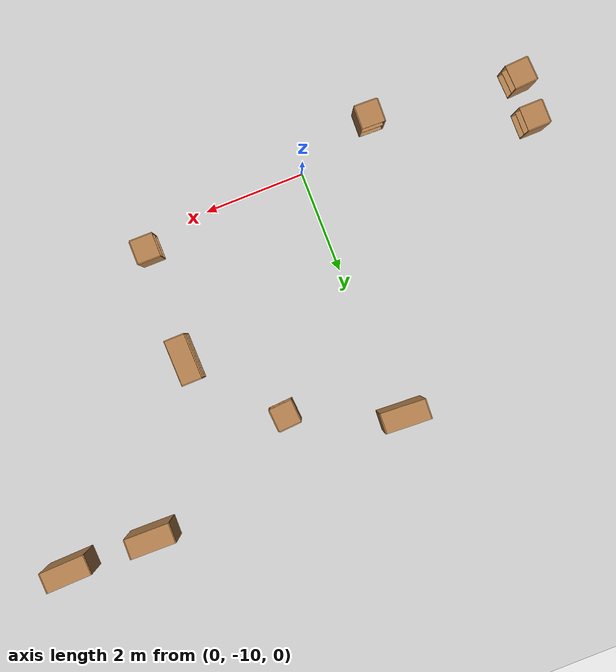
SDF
<sdf version="1.6">
 <world name="default">
  <model name="ground_plane">
   <static>1</static>
   <link name="link">
    <collision name="collision">
     <geometry><plane><normal>0 0 1</normal><size>100 100</size></plane></geometry>
     <surface>
      <contact><collide_bitmask>65535</collide_bitmask></contact>
      <friction><ode><mu>100</mu><mu2>50</mu2></ode></friction>
     </surface>
    </collision>
    <visual name="visual">
     <cast_shadows>0</cast_shadows>
     <geometry><plane><normal>0 0 1</normal><size>100 100</size></plane></geometry>
     <material>
      <script><uri>file://media/materials/scripts/gazebo.material</uri><name>Gazebo/Grey</name></script>
     </material>
    </visual>
   </link>
  </model>
  <model name="cabinet">
   <static>1</static>
   <link name="cabinet_bottom_plate">
    <inertial>
     <pose>0 0 -1 0 -0 0</pose>
     <inertia><ixx>2.05</ixx><ixy>0</ixy><ixz>0</ixz><iyy>2.05</iyy><iyz>0</iyz><izz>2.05</izz></inertia>
     <mass>25</mass>
    </inertial>
    <collision name="cabinet_bottom_plate_geom">
     <pose>0 0 0.01 0 -0 0</pose>
     <geometry><box><size>0.45 0.45 0.02</size></box></geometry>
    </collision>
    <visual name="cabinet_bottom_plate_geom_visual">
     <pose>0 0 0.01 0 -0 0</pose>
     <geometry><box><size>0.45 0.45 0.02</size></box></geometry>
     <material>
      <script><uri>file://media/materials/scripts/gazebo.material</uri><name>Gazebo/Wood</name></script>
     </material>
    </visual>
    <collision name="cabinet_bottom_plate_geom_cabinet_back_plate">
     <pose>0.235 0 0.51 0 -0 0</pose>
     <geometry><box><size>0.02 0.45 1.02</size></box></geometry>
    </collision>
    <visual name="cabinet_bottom_plate_geom_cabinet_back_plate_visual">
     <pose>0.235 0 0.51 0 -0 0</pose>
     <geometry><box><size>0.02 0.45 1.02</size></box></geometry>
     <material>
      <script><uri>file://media/materials/scripts/gazebo.material</uri><name>Gazebo/Wood</name></script>
     </material>
    </visual>
    <collision name="cabinet_bottom_plate_geom_cabinet_left_plate">
     <pose>0 0.235 0.51 0 -0 0</pose>
     <geometry><box><size>0.45 0.02 1.02</size></box></geometry>
    </collision>
    <visual name="cabinet_bottom_plate_geom_cabinet_left_plate_visual">
     <pose>0 0.235 0.51 0 -0 0</pose>
     <geometry><box><size>0.45 0.02 1.02</size></box></geometry>
     <material>
      <script><uri>file://media/materials/scripts/gazebo.material</uri><name>Gazebo/Wood</name></script>
     </material>
    </visual>
    <collision name="cabinet_bottom_plate_geom_cabinet_middle_plate">
     <pose>0 0 0.51 0 -0 0</pose>
     <geometry><box><size>0.45 0.45 0.02</size></box></geometry>
    </collision>
    <visual name="cabinet_bottom_plate_geom_cabinet_middle_plate_visual">
     <pose>0 0 0.51 0 -0 0</pose>
     <geometry><box><size>0.45 0.45 0.02</size></box></geometry>
     <material>
      <script><uri>file://media/materials/scripts/gazebo.material</uri><name>Gazebo/Wood</name></script>
     </material>
    </visual>
    <collision name="cabinet_bottom_plate_geom_cabinet_right_plate">
     <pose>0 -0.235 0.51 0 -0 0</pose>
     <geometry><box><size>0.45 0.02 1.02</size></box></geometry>
    </collision>
    <visual name="cabinet_bottom_plate_geom_cabinet_right_plate_visual">
     <pose>0 -0.235 0.51 0 -0 0</pose>
     <geometry><box><size>0.45 0.02 1.02</size></box></geometry>
     <material>
      <script><uri>file://media/materials/scripts/gazebo.material</uri><name>Gazebo/Wood</name></script>
     </material>
    </visual>
    <collision name="cabinet_bottom_plate_geom_cabinet_top_plate">
     <pose>0 0 1.01 0 -0 0</pose>
     <geometry><box><size>0.45 0.45 0.02</size></box></geometry>
    </collision>
    <visual name="cabinet_bottom_plate_geom_cabinet_top_plate_visual">
     <pose>0 0 1.01 0 -0 0</pose>
     <geometry><box><size>0.45 0.45 0.02</size></box></geometry>
     <material>
      <script><uri>file://media/materials/scripts/gazebo.material</uri><name>Gazebo/Wood</name></script>
     </material>
    </visual>
   </link>
   <pose>-4.49938 -10.1813 0 0 0 -3.08048</pose>
  </model>
  <model name="cabinet_0">
   <static>1</static>
   <link name="cabinet_bottom_plate">
    <inertial>
     <pose>0 0 -1 0 -0 0</pose>
     <inertia><ixx>2.05</ixx><ixy>0</ixy><ixz>0</ixz><iyy>2.05</iyy><iyz>0</iyz><izz>2.05</izz></inertia>
     <mass>25</mass>
    </inertial>
    <collision name="cabinet_bottom_plate_geom">
     <pose>0 0 0.01 0 -0 0</pose>
     <geometry><box><size>0.45 0.45 0.02</size></box></geometry>
    </collision>
    <visual name="cabinet_bottom_plate_geom_visual">
     <pose>0 0 0.01 0 -0 0</pose>
     <geometry><box><size>0.45 0.45 0.02</size></box></geometry>
     <material>
      <script><uri>file://media/materials/scripts/gazebo.material</uri><name>Gazebo/Wood</name></script>
     </material>
    </visual>
    <collision name="cabinet_bottom_plate_geom_cabinet_back_plate">
     <pose>0.235 0 0.51 0 -0 0</pose>
     <geometry><box><size>0.02 0.45 1.02</size></box></geometry>
    </collision>
    <visual name="cabinet_bottom_plate_geom_cabinet_back_plate_visual">
     <pose>0.235 0 0.51 0 -0 0</pose>
     <geometry><box><size>0.02 0.45 1.02</size></box></geometry>
     <material>
      <script><uri>file://media/materials/scripts/gazebo.material</uri><name>Gazebo/Wood</name></script>
     </material>
    </visual>
    <collision name="cabinet_bottom_plate_geom_cabinet_left_plate">
     <pose>0 0.235 0.51 0 -0 0</pose>
     <geometry><box><size>0.45 0.02 1.02</size></box></geometry>
    </collision>
    <visual name="cabinet_bottom_plate_geom_cabinet_left_plate_visual">
     <pose>0 0.235 0.51 0 -0 0</pose>
     <geometry><box><size>0.45 0.02 1.02</size></box></geometry>
     <material>
      <script><uri>file://media/materials/scripts/gazebo.material</uri><name>Gazebo/Wood</name></script>
     </material>
    </visual>
    <collision name="cabinet_bottom_plate_geom_cabinet_middle_plate">
     <pose>0 0 0.51 0 -0 0</pose>
     <geometry><box><size>0.45 0.45 0.02</size></box></geometry>
    </collision>
    <visual name="cabinet_bottom_plate_geom_cabinet_middle_plate_visual">
     <pose>0 0 0.51 0 -0 0</pose>
     <geometry><box><size>0.45 0.45 0.02</size></box></geometry>
     <material>
      <script><uri>file://media/materials/scripts/gazebo.material</uri><name>Gazebo/Wood</name></script>
     </material>
    </visual>
    <collision name="cabinet_bottom_plate_geom_cabinet_right_plate">
     <pose>0 -0.235 0.51 0 -0 0</pose>
     <geometry><box><size>0.45 0.02 1.02</size></box></geometry>
    </collision>
    <visual name="cabinet_bottom_plate_geom_cabinet_right_plate_visual">
     <pose>0 -0.235 0.51 0 -0 0</pose>
     <geometry><box><size>0.45 0.02 1.02</size></box></geometry>
     <material>
      <script><uri>file://media/materials/scripts/gazebo.material</uri><name>Gazebo/Wood</name></script>
     </material>
    </visual>
    <collision name="cabinet_bottom_plate_geom_cabinet_top_plate">
     <pose>0 0 1.01 0 -0 0</pose>
     <geometry><box><size>0.45 0.45 0.02</size></box></geometry>
    </collision>
    <visual name="cabinet_bottom_plate_geom_cabinet_top_plate_visual">
     <pose>0 0 1.01 0 -0 0</pose>
     <geometry><box><size>0.45 0.45 0.02</size></box></geometry>
     <material>
      <script><uri>file://media/materials/scripts/gazebo.material</uri><name>Gazebo/Wood</name></script>
     </material>
    </visual>
   </link>
   <pose>-4.44718 -9.34571 0 0 0 -3.13032</pose>
  </model>
  <model name="bookshelf">
   <static>1</static>
   <link name="link">
    <inertial><mass>1</mass></inertial>
    <collision name="back">
     <pose>0 0.005 0.6 0 -0 0</pose>
     <geometry><box><size>0.9 0.01 1.2</size></box></geometry>
    </collision>
    <visual name="visual1">
     <pose>0 0.005 0.6 0 -0 0</pose>
     <geometry><box><size>0.9 0.01 1.2</size></box></geometry>
     <material>
      <script><uri>file://media/materials/scripts/gazebo.material</uri><name>Gazebo/Wood</name></script>
     </material>
    </visual>
    <collision name="left_side">
     <pose>0.45 -0.195 0.6 0 -0 0</pose>
     <geometry><box><size>0.02 0.4 1.2</size></box></geometry>
    </collision>
    <visual name="visual2">
     <pose>0.45 -0.195 0.6 0 -0 0</pose>
     <geometry><box><size>0.02 0.4 1.2</size></box></geometry>
     <material>
      <script><uri>file://media/materials/scripts/gazebo.material</uri><name>Gazebo/Wood</name></script>
     </material>
    </visual>
    <collision name="right_side">
     <pose>-0.45 -0.195 0.6 0 -0 0</pose>
     <geometry><box><size>0.02 0.4 1.2</size></box></geometry>
    </collision>
    <visual name="visual3">
     <pose>-0.45 -0.195 0.6 0 -0 0</pose>
     <geometry><box><size>0.02 0.4 1.2</size></box></geometry>
     <material>
      <script><uri>file://media/materials/scripts/gazebo.material</uri><name>Gazebo/Wood</name></script>
     </material>
    </visual>
    <collision name="bottom">
     <pose>0 -0.195 0.03 0 -0 0</pose>
     <geometry><box><size>0.88 0.4 0.06</size></box></geometry>
    </collision>
    <visual name="visual4">
     <pose>0 -0.195 0.03 0 -0 0</pose>
     <geometry><box><size>0.88 0.4 0.06</size></box></geometry>
     <material>
      <script><uri>file://media/materials/scripts/gazebo.material</uri><name>Gazebo/Wood</name></script>
     </material>
    </visual>
    <collision name="top">
     <pose>0 -0.195 1.19 0 -0 0</pose>
     <geometry><box><size>0.88 0.4 0.02</size></box></geometry>
    </collision>
    <visual name="visual5">
     <pose>0 -0.195 1.19 0 -0 0</pose>
     <geometry><box><size>0.88 0.4 0.02</size></box></geometry>
     <material>
      <script><uri>file://media/materials/scripts/gazebo.material</uri><name>Gazebo/Wood</name></script>
     </material>
    </visual>
    <collision name="low_shelf">
     <pose>0 -0.195 0.43 0 -0 0</pose>
     <geometry><box><size>0.88 0.4 0.02</size></box></geometry>
    </collision>
    <visual name="visual6">
     <pose>0 -0.195 0.43 0 -0 0</pose>
     <geometry><box><size>0.88 0.4 0.02</size></box></geometry>
     <material>
      <script><uri>file://media/materials/scripts/gazebo.material</uri><name>Gazebo/Wood</name></script>
     </material>
    </visual>
    <collision name="high_shelf">
     <pose>0 -0.195 0.8 0 -0 0</pose>
     <geometry><box><size>0.88 0.4 0.02</size></box></geometry>
    </collision>
    <visual name="visual7">
     <pose>0 -0.195 0.8 0 -0 0</pose>
     <geometry><box><size>0.88 0.4 0.02</size></box></geometry>
     <material>
      <script><uri>file://media/materials/scripts/gazebo.material</uri><name>Gazebo/Wood</name></script>
     </material>
    </visual>
   </link>
   <pose>5.19449 -4.72447 0 0 -0 3.1286</pose>
  </model>
  <model name="bookshelf_0">
   <static>1</static>
   <link name="link">
    <inertial><mass>1</mass></inertial>
    <collision name="back">
     <pose>0 0.005 0.6 0 -0 0</pose>
     <geometry><box><size>0.9 0.01 1.2</size></box></geometry>
    </collision>
    <visual name="visual1">
     <pose>0 0.005 0.6 0 -0 0</pose>
     <geometry><box><size>0.9 0.01 1.2</size></box></geometry>
     <material>
      <script><uri>file://media/materials/scripts/gazebo.material</uri><name>Gazebo/Wood</name></script>
     </material>
    </visual>
    <collision name="left_side">
     <pose>0.45 -0.195 0.6 0 -0 0</pose>
     <geometry><box><size>0.02 0.4 1.2</size></box></geometry>
    </collision>
    <visual name="visual2">
     <pose>0.45 -0.195 0.6 0 -0 0</pose>
     <geometry><box><size>0.02 0.4 1.2</size></box></geometry>
     <material>
      <script><uri>file://media/materials/scripts/gazebo.material</uri><name>Gazebo/Wood</name></script>
     </material>
    </visual>
    <collision name="right_side">
     <pose>-0.45 -0.195 0.6 0 -0 0</pose>
     <geometry><box><size>0.02 0.4 1.2</size></box></geometry>
    </collision>
    <visual name="visual3">
     <pose>-0.45 -0.195 0.6 0 -0 0</pose>
     <geometry><box><size>0.02 0.4 1.2</size></box></geometry>
     <material>
      <script><uri>file://media/materials/scripts/gazebo.material</uri><name>Gazebo/Wood</name></script>
     </material>
    </visual>
    <collision name="bottom">
     <pose>0 -0.195 0.03 0 -0 0</pose>
     <geometry><box><size>0.88 0.4 0.06</size></box></geometry>
    </collision>
    <visual name="visual4">
     <pose>0 -0.195 0.03 0 -0 0</pose>
     <geometry><box><size>0.88 0.4 0.06</size></box></geometry>
     <material>
      <script><uri>file://media/materials/scripts/gazebo.material</uri><name>Gazebo/Wood</name></script>
     </material>
    </visual>
    <collision name="top">
     <pose>0 -0.195 1.19 0 -0 0</pose>
     <geometry><box><size>0.88 0.4 0.02</size></box></geometry>
    </collision>
    <visual name="visual5">
     <pose>0 -0.195 1.19 0 -0 0</pose>
     <geometry><box><size>0.88 0.4 0.02</size></box></geometry>
     <material>
      <script><uri>file://media/materials/scripts/gazebo.material</uri><name>Gazebo/Wood</name></script>
     </material>
    </visual>
    <collision name="low_shelf">
     <pose>0 -0.195 0.43 0 -0 0</pose>
     <geometry><box><size>0.88 0.4 0.02</size></box></geometry>
    </collision>
    <visual name="visual6">
     <pose>0 -0.195 0.43 0 -0 0</pose>
     <geometry><box><size>0.88 0.4 0.02</size></box></geometry>
     <material>
      <script><uri>file://media/materials/scripts/gazebo.material</uri><name>Gazebo/Wood</name></script>
     </material>
    </visual>
    <collision name="high_shelf">
     <pose>0 -0.195 0.8 0 -0 0</pose>
     <geometry><box><size>0.88 0.4 0.02</size></box></geometry>
    </collision>
    <visual name="visual7">
     <pose>0 -0.195 0.8 0 -0 0</pose>
     <geometry><box><size>0.88 0.4 0.02</size></box></geometry>
     <material>
      <script><uri>file://media/materials/scripts/gazebo.material</uri><name>Gazebo/Wood</name></script>
     </material>
    </visual>
   </link>
   <pose>6.89545 -4.72461 0 0 0 -3.1065</pose>
  </model>
  <model name="cabinet_clone">
   <static>1</static>
   <link name="cabinet_bottom_plate">
    <inertial>
     <pose>0 0 -1 0 -0 0</pose>
     <inertia><ixx>2.05</ixx><ixy>0</ixy><ixz>0</ixz><iyy>2.05</iyy><iyz>0</iyz><izz>2.05</izz></inertia>
     <mass>25</mass>
    </inertial>
    <collision name="cabinet_bottom_plate_geom">
     <pose>0 0 0.01 0 -0 0</pose>
     <geometry><box><size>0.45 0.45 0.02</size></box></geometry>
    </collision>
    <visual name="cabinet_bottom_plate_geom_visual">
     <pose>0 0 0.01 0 -0 0</pose>
     <geometry><box><size>0.45 0.45 0.02</size></box></geometry>
     <material>
      <script><uri>file://media/materials/scripts/gazebo.material</uri><name>Gazebo/Wood</name></script>
     </material>
    </visual>
    <collision name="cabinet_bottom_plate_geom_cabinet_back_plate">
     <pose>0.235 0 0.51 0 -0 0</pose>
     <geometry><box><size>0.02 0.45 1.02</size></box></geometry>
    </collision>
    <visual name="cabinet_bottom_plate_geom_cabinet_back_plate_visual">
     <pose>0.235 0 0.51 0 -0 0</pose>
     <geometry><box><size>0.02 0.45 1.02</size></box></geometry>
     <material>
      <script><uri>file://media/materials/scripts/gazebo.material</uri><name>Gazebo/Wood</name></script>
     </material>
    </visual>
    <collision name="cabinet_bottom_plate_geom_cabinet_left_plate">
     <pose>0 0.235 0.51 0 -0 0</pose>
     <geometry><box><size>0.45 0.02 1.02</size></box></geometry>
    </collision>
    <visual name="cabinet_bottom_plate_geom_cabinet_left_plate_visual">
     <pose>0 0.235 0.51 0 -0 0</pose>
     <geometry><box><size>0.45 0.02 1.02</size></box></geometry>
     <material>
      <script><uri>file://media/materials/scripts/gazebo.material</uri><name>Gazebo/Wood</name></script>
     </material>
    </visual>
    <collision name="cabinet_bottom_plate_geom_cabinet_middle_plate">
     <pose>0 0 0.51 0 -0 0</pose>
     <geometry><box><size>0.45 0.45 0.02</size></box></geometry>
    </collision>
    <visual name="cabinet_bottom_plate_geom_cabinet_middle_plate_visual">
     <pose>0 0 0.51 0 -0 0</pose>
     <geometry><box><size>0.45 0.45 0.02</size></box></geometry>
     <material>
      <script><uri>file://media/materials/scripts/gazebo.material</uri><name>Gazebo/Wood</name></script>
     </material>
    </visual>
    <collision name="cabinet_bottom_plate_geom_cabinet_right_plate">
     <pose>0 -0.235 0.51 0 -0 0</pose>
     <geometry><box><size>0.45 0.02 1.02</size></box></geometry>
    </collision>
    <visual name="cabinet_bottom_plate_geom_cabinet_right_plate_visual">
     <pose>0 -0.235 0.51 0 -0 0</pose>
     <geometry><box><size>0.45 0.02 1.02</size></box></geometry>
     <material>
      <script><uri>file://media/materials/scripts/gazebo.material</uri><name>Gazebo/Wood</name></script>
     </material>
    </visual>
    <collision name="cabinet_bottom_plate_geom_cabinet_top_plate">
     <pose>0 0 1.01 0 -0 0</pose>
     <geometry><box><size>0.45 0.45 0.02</size></box></geometry>
    </collision>
    <visual name="cabinet_bottom_plate_geom_cabinet_top_plate_visual">
     <pose>0 0 1.01 0 -0 0</pose>
     <geometry><box><size>0.45 0.45 0.02</size></box></geometry>
     <material>
      <script><uri>file://media/materials/scripts/gazebo.material</uri><name>Gazebo/Wood</name></script>
     </material>
    </visual>
   </link>
   <pose>-1.55811 -10.5006 0 0 0 -1.59522</pose>
  </model>
  <model name="cabinet_clone_0">
   <static>1</static>
   <link name="cabinet_bottom_plate">
    <inertial>
     <pose>0 0 -1 0 -0 0</pose>
     <inertia><ixx>2.05</ixx><ixy>0</ixy><ixz>0</ixz><iyy>2.05</iyy><iyz>0</iyz><izz>2.05</izz></inertia>
     <mass>25</mass>
    </inertial>
    <collision name="cabinet_bottom_plate_geom">
     <pose>0 0 0.01 0 -0 0</pose>
     <geometry><box><size>0.45 0.45 0.02</size></box></geometry>
    </collision>
    <visual name="cabinet_bottom_plate_geom_visual">
     <pose>0 0 0.01 0 -0 0</pose>
     <geometry><box><size>0.45 0.45 0.02</size></box></geometry>
     <material>
      <script><uri>file://media/materials/scripts/gazebo.material</uri><name>Gazebo/Wood</name></script>
     </material>
    </visual>
    <collision name="cabinet_bottom_plate_geom_cabinet_back_plate">
     <pose>0.235 0 0.51 0 -0 0</pose>
     <geometry><box><size>0.02 0.45 1.02</size></box></geometry>
    </collision>
    <visual name="cabinet_bottom_plate_geom_cabinet_back_plate_visual">
     <pose>0.235 0 0.51 0 -0 0</pose>
     <geometry><box><size>0.02 0.45 1.02</size></box></geometry>
     <material>
      <script><uri>file://media/materials/scripts/gazebo.material</uri><name>Gazebo/Wood</name></script>
     </material>
    </visual>
    <collision name="cabinet_bottom_plate_geom_cabinet_left_plate">
     <pose>0 0.235 0.51 0 -0 0</pose>
     <geometry><box><size>0.45 0.02 1.02</size></box></geometry>
    </collision>
    <visual name="cabinet_bottom_plate_geom_cabinet_left_plate_visual">
     <pose>0 0.235 0.51 0 -0 0</pose>
     <geometry><box><size>0.45 0.02 1.02</size></box></geometry>
     <material>
      <script><uri>file://media/materials/scripts/gazebo.material</uri><name>Gazebo/Wood</name></script>
     </material>
    </visual>
    <collision name="cabinet_bottom_plate_geom_cabinet_middle_plate">
     <pose>0 0 0.51 0 -0 0</pose>
     <geometry><box><size>0.45 0.45 0.02</size></box></geometry>
    </collision>
    <visual name="cabinet_bottom_plate_geom_cabinet_middle_plate_visual">
     <pose>0 0 0.51 0 -0 0</pose>
     <geometry><box><size>0.45 0.45 0.02</size></box></geometry>
     <material>
      <script><uri>file://media/materials/scripts/gazebo.material</uri><name>Gazebo/Wood</name></script>
     </material>
    </visual>
    <collision name="cabinet_bottom_plate_geom_cabinet_right_plate">
     <pose>0 -0.235 0.51 0 -0 0</pose>
     <geometry><box><size>0.45 0.02 1.02</size></box></geometry>
    </collision>
    <visual name="cabinet_bottom_plate_geom_cabinet_right_plate_visual">
     <pose>0 -0.235 0.51 0 -0 0</pose>
     <geometry><box><size>0.45 0.02 1.02</size></box></geometry>
     <material>
      <script><uri>file://media/materials/scripts/gazebo.material</uri><name>Gazebo/Wood</name></script>
     </material>
    </visual>
    <collision name="cabinet_bottom_plate_geom_cabinet_top_plate">
     <pose>0 0 1.01 0 -0 0</pose>
     <geometry><box><size>0.45 0.45 0.02</size></box></geometry>
    </collision>
    <visual name="cabinet_bottom_plate_geom_cabinet_top_plate_visual">
     <pose>0 0 1.01 0 -0 0</pose>
     <geometry><box><size>0.45 0.45 0.02</size></box></geometry>
     <material>
      <script><uri>file://media/materials/scripts/gazebo.material</uri><name>Gazebo/Wood</name></script>
     </material>
    </visual>
   </link>
   <pose>1.99583 -5.78449 0 0 -0 1.64091</pose>
  </model>
  <model name="bookshelf_clone_0">
   <static>1</static>
   <link name="link">
    <inertial><mass>1</mass></inertial>
    <collision name="back">
     <pose>0 0.005 0.6 0 -0 0</pose>
     <geometry><box><size>0.9 0.01 1.2</size></box></geometry>
    </collision>
    <visual name="visual1">
     <pose>0 0.005 0.6 0 -0 0</pose>
     <geometry><box><size>0.9 0.01 1.2</size></box></geometry>
     <material>
      <script><uri>file://media/materials/scripts/gazebo.material</uri><name>Gazebo/Wood</name></script>
     </material>
    </visual>
    <collision name="left_side">
     <pose>0.45 -0.195 0.6 0 -0 0</pose>
     <geometry><box><size>0.02 0.4 1.2</size></box></geometry>
    </collision>
    <visual name="visual2">
     <pose>0.45 -0.195 0.6 0 -0 0</pose>
     <geometry><box><size>0.02 0.4 1.2</size></box></geometry>
     <material>
      <script><uri>file://media/materials/scripts/gazebo.material</uri><name>Gazebo/Wood</name></script>
     </material>
    </visual>
    <collision name="right_side">
     <pose>-0.45 -0.195 0.6 0 -0 0</pose>
     <geometry><box><size>0.02 0.4 1.2</size></box></geometry>
    </collision>
    <visual name="visual3">
     <pose>-0.45 -0.195 0.6 0 -0 0</pose>
     <geometry><box><size>0.02 0.4 1.2</size></box></geometry>
     <material>
      <script><uri>file://media/materials/scripts/gazebo.material</uri><name>Gazebo/Wood</name></script>
     </material>
    </visual>
    <collision name="bottom">
     <pose>0 -0.195 0.03 0 -0 0</pose>
     <geometry><box><size>0.88 0.4 0.06</size></box></geometry>
    </collision>
    <visual name="visual4">
     <pose>0 -0.195 0.03 0 -0 0</pose>
     <geometry><box><size>0.88 0.4 0.06</size></box></geometry>
     <material>
      <script><uri>file://media/materials/scripts/gazebo.material</uri><name>Gazebo/Wood</name></script>
     </material>
    </visual>
    <collision name="top">
     <pose>0 -0.195 1.19 0 -0 0</pose>
     <geometry><box><size>0.88 0.4 0.02</size></box></geometry>
    </collision>
    <visual name="visual5">
     <pose>0 -0.195 1.19 0 -0 0</pose>
     <geometry><box><size>0.88 0.4 0.02</size></box></geometry>
     <material>
      <script><uri>file://media/materials/scripts/gazebo.material</uri><name>Gazebo/Wood</name></script>
     </material>
    </visual>
    <collision name="low_shelf">
     <pose>0 -0.195 0.43 0 -0 0</pose>
     <geometry><box><size>0.88 0.4 0.02</size></box></geometry>
    </collision>
    <visual name="visual6">
     <pose>0 -0.195 0.43 0 -0 0</pose>
     <geometry><box><size>0.88 0.4 0.02</size></box></geometry>
     <material>
      <script><uri>file://media/materials/scripts/gazebo.material</uri><name>Gazebo/Wood</name></script>
     </material>
    </visual>
    <collision name="high_shelf">
     <pose>0 -0.195 0.8 0 -0 0</pose>
     <geometry><box><size>0.88 0.4 0.02</size></box></geometry>
    </collision>
    <visual name="visual7">
     <pose>0 -0.195 0.8 0 -0 0</pose>
     <geometry><box><size>0.88 0.4 0.02</size></box></geometry>
     <material>
      <script><uri>file://media/materials/scripts/gazebo.material</uri><name>Gazebo/Wood</name></script>
     </material>
    </visual>
   </link>
   <pose>-0.116298 -5.15597 0 0 -0 3.09456</pose>
  </model>
  <model name="cabinet_clone_clone">
   <static>1</static>
   <link name="cabinet_bottom_plate">
    <inertial>
     <pose>0 0 -1 0 -0 0</pose>
     <inertia><ixx>2.05</ixx><ixy>0</ixy><ixz>0</ixz><iyy>2.05</iyy><iyz>0</iyz><izz>2.05</izz></inertia>
     <mass>25</mass>
    </inertial>
    <collision name="cabinet_bottom_plate_geom">
     <pose>0 0 0.01 0 -0 0</pose>
     <geometry><box><size>0.45 0.45 0.02</size></box></geometry>
    </collision>
    <visual name="cabinet_bottom_plate_geom_visual">
     <pose>0 0 0.01 0 -0 0</pose>
     <geometry><box><size>0.45 0.45 0.02</size></box></geometry>
     <material>
      <script><uri>file://media/materials/scripts/gazebo.material</uri><name>Gazebo/Wood</name></script>
     </material>
    </visual>
    <collision name="cabinet_bottom_plate_geom_cabinet_back_plate">
     <pose>0.235 0 0.51 0 -0 0</pose>
     <geometry><box><size>0.02 0.45 1.02</size></box></geometry>
    </collision>
    <visual name="cabinet_bottom_plate_geom_cabinet_back_plate_visual">
     <pose>0.235 0 0.51 0 -0 0</pose>
     <geometry><box><size>0.02 0.45 1.02</size></box></geometry>
     <material>
      <script><uri>file://media/materials/scripts/gazebo.material</uri><name>Gazebo/Wood</name></script>
     </material>
    </visual>
    <collision name="cabinet_bottom_plate_geom_cabinet_left_plate">
     <pose>0 0.235 0.51 0 -0 0</pose>
     <geometry><box><size>0.45 0.02 1.02</size></box></geometry>
    </collision>
    <visual name="cabinet_bottom_plate_geom_cabinet_left_plate_visual">
     <pose>0 0.235 0.51 0 -0 0</pose>
     <geometry><box><size>0.45 0.02 1.02</size></box></geometry>
     <material>
      <script><uri>file://media/materials/scripts/gazebo.material</uri><name>Gazebo/Wood</name></script>
     </material>
    </visual>
    <collision name="cabinet_bottom_plate_geom_cabinet_middle_plate">
     <pose>0 0 0.51 0 -0 0</pose>
     <geometry><box><size>0.45 0.45 0.02</size></box></geometry>
    </collision>
    <visual name="cabinet_bottom_plate_geom_cabinet_middle_plate_visual">
     <pose>0 0 0.51 0 -0 0</pose>
     <geometry><box><size>0.45 0.45 0.02</size></box></geometry>
     <material>
      <script><uri>file://media/materials/scripts/gazebo.material</uri><name>Gazebo/Wood</name></script>
     </material>
    </visual>
    <collision name="cabinet_bottom_plate_geom_cabinet_right_plate">
     <pose>0 -0.235 0.51 0 -0 0</pose>
     <geometry><box><size>0.45 0.02 1.02</size></box></geometry>
    </collision>
    <visual name="cabinet_bottom_plate_geom_cabinet_right_plate_visual">
     <pose>0 -0.235 0.51 0 -0 0</pose>
     <geometry><box><size>0.45 0.02 1.02</size></box></geometry>
     <material>
      <script><uri>file://media/materials/scripts/gazebo.material</uri><name>Gazebo/Wood</name></script>
     </material>
    </visual>
    <collision name="cabinet_bottom_plate_geom_cabinet_top_plate">
     <pose>0 0 1.01 0 -0 0</pose>
     <geometry><box><size>0.45 0.45 0.02</size></box></geometry>
    </collision>
    <visual name="cabinet_bottom_plate_geom_cabinet_top_plate_visual">
     <pose>0 0 1.01 0 -0 0</pose>
     <geometry><box><size>0.45 0.45 0.02</size></box></geometry>
     <material>
      <script><uri>file://media/materials/scripts/gazebo.material</uri><name>Gazebo/Wood</name></script>
     </material>
    </visual>
   </link>
   <pose>3.30649 -9.67571 0 0 -0 0</pose>
  </model>
  <model name="bookshelf_clone_0_clone_0">
   <static>1</static>
   <link name="link">
    <inertial><mass>1</mass></inertial>
    <collision name="back">
     <pose>0 0.005 0.6 0 -0 0</pose>
     <geometry><box><size>0.9 0.01 1.2</size></box></geometry>
    </collision>
    <visual name="visual1">
     <pose>0 0.005 0.6 0 -0 0</pose>
     <geometry><box><size>0.9 0.01 1.2</size></box></geometry>
     <material>
      <script><uri>file://media/materials/scripts/gazebo.material</uri><name>Gazebo/Wood</name></script>
     </material>
    </visual>
    <collision name="left_side">
     <pose>0.45 -0.195 0.6 0 -0 0</pose>
     <geometry><box><size>0.02 0.4 1.2</size></box></geometry>
    </collision>
    <visual name="visual2">
     <pose>0.45 -0.195 0.6 0 -0 0</pose>
     <geometry><box><size>0.02 0.4 1.2</size></box></geometry>
     <material>
      <script><uri>file://media/materials/scripts/gazebo.material</uri><name>Gazebo/Wood</name></script>
     </material>
    </visual>
    <collision name="right_side">
     <pose>-0.45 -0.195 0.6 0 -0 0</pose>
     <geometry><box><size>0.02 0.4 1.2</size></box></geometry>
    </collision>
    <visual name="visual3">
     <pose>-0.45 -0.195 0.6 0 -0 0</pose>
     <geometry><box><size>0.02 0.4 1.2</size></box></geometry>
     <material>
      <script><uri>file://media/materials/scripts/gazebo.material</uri><name>Gazebo/Wood</name></script>
     </material>
    </visual>
    <collision name="bottom">
     <pose>0 -0.195 0.03 0 -0 0</pose>
     <geometry><box><size>0.88 0.4 0.06</size></box></geometry>
    </collision>
    <visual name="visual4">
     <pose>0 -0.195 0.03 0 -0 0</pose>
     <geometry><box><size>0.88 0.4 0.06</size></box></geometry>
     <material>
      <script><uri>file://media/materials/scripts/gazebo.material</uri><name>Gazebo/Wood</name></script>
     </material>
    </visual>
    <collision name="top">
     <pose>0 -0.195 1.19 0 -0 0</pose>
     <geometry><box><size>0.88 0.4 0.02</size></box></geometry>
    </collision>
    <visual name="visual5">
     <pose>0 -0.195 1.19 0 -0 0</pose>
     <geometry><box><size>0.88 0.4 0.02</size></box></geometry>
     <material>
      <script><uri>file://media/materials/scripts/gazebo.material</uri><name>Gazebo/Wood</name></script>
     </material>
    </visual>
    <collision name="low_shelf">
     <pose>0 -0.195 0.43 0 -0 0</pose>
     <geometry><box><size>0.88 0.4 0.02</size></box></geometry>
    </collision>
    <visual name="visual6">
     <pose>0 -0.195 0.43 0 -0 0</pose>
     <geometry><box><size>0.88 0.4 0.02</size></box></geometry>
     <material>
      <script><uri>file://media/materials/scripts/gazebo.material</uri><name>Gazebo/Wood</name></script>
     </material>
    </visual>
    <collision name="high_shelf">
     <pose>0 -0.195 0.8 0 -0 0</pose>
     <geometry><box><size>0.88 0.4 0.02</size></box></geometry>
    </collision>
    <visual name="visual7">
     <pose>0 -0.195 0.8 0 -0 0</pose>
     <geometry><box><size>0.88 0.4 0.02</size></box></geometry>
     <material>
      <script><uri>file://media/materials/scripts/gazebo.material</uri><name>Gazebo/Wood</name></script>
     </material>
    </visual>
   </link>
   <pose>3.5857 -7.45806 0 0 0 -1.55442</pose>
  </model>
 </world>
</sdf>
